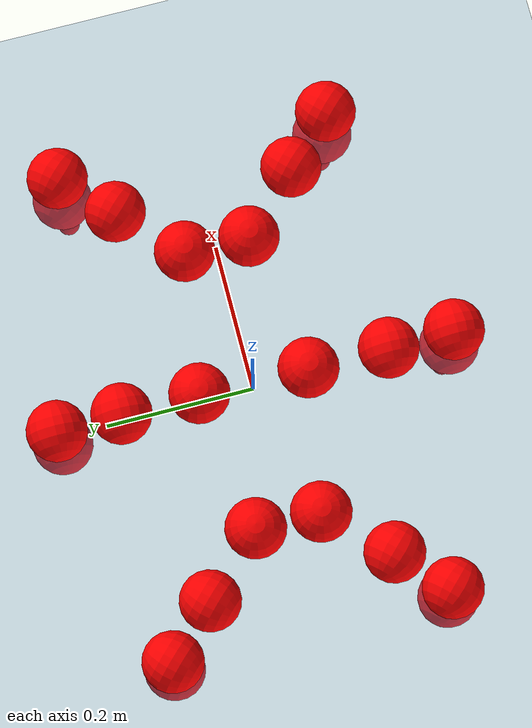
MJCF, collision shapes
<mujoco model="Golem">
  <compiler angle="radian" assetdir="assets" balanceinertia="true" inertiafromgeom="false"/>

  <option timestep="0.005" density="1.2" viscosity="2e-05"/>

  <size nkey="1"/>

  <visual>
    <quality shadowsize="8192"/>
    <map shadowclip="0.5"/>
  </visual>

  <default>
    <default class="/">
      <joint armature="0.01" damping="0.01" frictionloss="0.01"/>
      <geom contype="0" conaffinity="0" group="1" solref="-1000 -80"/>
      <site size="0.01 0.005 0.005" group="5"/>
      <general forcelimited="true" biastype="affine" gainprm="25" biasprm="0 -25 -0.5"/>
      <default class="visual">
        <geom type="mesh" group="2"/>
      </default>
      <default class="collision">
        <geom group="3"/>
      </default>
      <default class="foot">
        <geom size="0.01 0 0" condim="6" group="4" priority="1" solimp="0.015 1 0.01"/>
      </default>
      <default class="reward_collision_sphere">
        <geom group="5" rgba="1 0 0 1"/>
      </default>
    </default>
  </default>

  <asset>
    <texture type="skybox" colorspace="auto" name="//unnamed_texture_0" builtin="gradient" rgb1="0.95 0.95 0.95" rgb2="0.95 0.95 0.95" width="100" height="600"/>
    <texture type="2d" colorspace="auto" name="texplane" builtin="checker" rgb1="0.345 0.575 0.748" rgb2="0.345 0.575 0.748" markrgb="1 1 1" width="512" height="512"/>
    <material name="MatPlane" class="/" texture="texplane" texuniform="true" texrepeat="2 2" specular="0.9"/>
    <mesh name="body" class="/" file="body.stl" scale="0.001 0.001 0.001"/>
    <mesh name="coxa" class="/" file="coxa.stl" scale="0.001 0.001 0.001"/>
    <mesh name="femur" class="/" file="femur.stl" scale="0.001 0.001 0.001"/>
    <mesh name="tibia" class="/" file="tibia.stl" scale="0.001 0.001 0.001"/>
    <mesh name="tarsus" class="/" file="tarsus.stl" scale="0.001 0.001 0.001"/>
  </asset>

  <worldbody>
    <geom name="floor" class="/" size="100 100 0.125" type="plane" group="0" material="MatPlane"/>
    <light name="toplight_shadow" class="/" pos="0 0 5" dir="0.0990148 0.0990148 -0.990148" type="directional" ambient="0.04 0.04 0.04" diffuse="0.55 0.55 0.55" specular="0.12 0.12 0.12"/>
    <light name="toplight_fill" class="/" pos="0 0 5" dir="0.0990148 0.0990148 -0.990148" type="directional" castshadow="false" ambient="0.04 0.04 0.04" diffuse="0.3 0.3 0.3" specular="0.08 0.08 0.08"/>
    <body name="trunk" pos="-0.000341799 0.000123127 0.000565806" quat="1 -4.29686e-06 1.67223e-05 -1.9021e-05">
      <inertial pos="0.000140338 0.000826326 -0.00484505" quat="0.999951 0.000688394 0.00222882 0.00957637" mass="3.92656" diaginertia="0.0273284 0.00391393 0.0103876"/>
      <joint name="//unnamed_joint_0" type="free"/>
      <geom name="//unnamed_geom_1" class="/" pos="0 0 0.0644532" quat="1 0 0 0" type="mesh" rgba="0.9 0.9 0.9 1" mesh="body"/>
      <site name="imu" class="/" pos="0.154494 0.00509287 0.104322" size="0.0101839"/>
      <camera name="track" class="/" pos="0 -1.65902 0" quat="0.707107 0.707107 0 0" mode="trackcom"/>
      <camera name="ego_camera" class="/" pos="0.158415 0 0.100708" quat="-0.5 -0.5 0.5 0.5"/>
      <body name="coxa_RR" pos="-0.216342 -0.0678583 0.0634166" quat="0.382654 9.05887e-05 1.15273e-05 -0.923892">
        <inertial pos="0.000713715 -1.82516e-05 0.00114766" quat="1 2.01921e-05 -0.000103274 0.00033713" mass="0.20914" diaginertia="0.0271063 0.00388146 0.0102352"/>
        <joint name="coxa_joint_RR" class="/" pos="0 0 0" axis="-0.00373931 0.000430036 -0.999993" range="-3.12157 3.17758" armature="0.010538" damping="0.0106308" frictionloss="0.0103428"/>
        <geom name="//unnamed_geom_2" class="/" type="mesh" rgba="0.2 0.2 0.2 1" mesh="coxa"/>
        <geom name="//unnamed_geom_3" class="reward_collision_sphere" size="0.0407356" pos="-0.0365573 0 0"/>
        <body name="femur_RR" pos="0.0720395 0.00239929 0.00143656" quat="0.500048 -0.49999 0.499966 0.499996">
          <inertial pos="0.00101974 0.00183629 0.00227945" quat="0.999998 0.000353373 -0.00111319 0.00150415" mass="0.211359" diaginertia="0.0271364 0.00388145 0.0106152"/>
          <joint name="femur_joint_RR" class="/" pos="0 0 0" axis="-0.0041273 0.000235043 -0.999991" range="-3.1439 3.14151" armature="0.00966735" damping="0.00550128" frictionloss="0.0113647"/>
          <geom name="//unnamed_geom_4" class="/" type="mesh" rgba="0.9 0.9 0.9 1" mesh="femur"/>
          <geom name="//unnamed_geom_5" class="reward_collision_sphere" size="0.0407356"/>
          <body name="tibia_RR" pos="0.000214815 -0.0879864 -0.00208458" quat="5.72049e-05 1 -0.000295595 0.000158275">
            <inertial pos="-0.000393356 -0.00211106 0.000466435" quat="0.999997 0.00196959 0.00123278 -0.00106719" mass="0.209454" diaginertia="0.0270939 0.00392504 0.0103763"/>
            <joint name="tibia_joint_RR" class="/" pos="0 0 0" axis="-9.13464e-05 -0.000232244 1" range="-3.13834 3.14138" armature="0.0104476" damping="0.0144364" frictionloss="0.0101706"/>
            <geom name="//unnamed_geom_6" class="/" type="mesh" rgba="0.2 0.2 0.2 1" mesh="tibia"/>
            <geom name="//unnamed_geom_7" class="reward_collision_sphere" size="0.0407356"/>
            <body name="tarsus_RR" pos="0.1049 0.000642252 -8.12978e-05" quat="1 0.00026555 1.01872e-05 -9.95064e-05">
              <inertial pos="0.0737199 0.000718488 -0.000400507" quat="0.500077 0.500971 0.498501 0.500448" mass="0.214413" diaginertia="0.0276446 0.00399061 0.0104045"/>
              <joint name="tarsus_joint_RR" class="/" pos="0 0 0" axis="-0.00393284 0.000326465 0.999992" range="-3.18468 3.1854" armature="0.0104368" damping="0" frictionloss="0.0101466"/>
              <geom name="//unnamed_geom_8" class="/" type="mesh" rgba="0.9 0.9 0.9 1" mesh="tarsus"/>
              <geom name="foot_1" class="foot" size="0.0102854" pos="0.136481 0 0" quat="0 -0.707107 0 0.707107"/>
              <geom name="//unnamed_geom_10" class="reward_collision_sphere" size="0.0407356"/>
              <geom name="//unnamed_geom_11" class="reward_collision_sphere" size="0.0152758" pos="0.130997 0 0"/>
              <site name="foot_1" class="foot" pos="0.136481 0 0" quat="0 -0.707107 0 0.707107" size="0.0101839"/>
            </body>
          </body>
        </body>
      </body>
      <body name="coxa_RM" pos="-0.00209695 -0.111177 0.0636063" quat="0.707346 0.000156179 -0.00020989 -0.706868">
        <inertial pos="0.000695002 0.000318436 0.000790175" quat="0.999941 0.00356911 -0.00966414 0.00351959" mass="0.21479" diaginertia="0.0269972 0.003928 0.0105347"/>
        <joint name="coxa_joint_RM" class="/" pos="0 0 0" axis="-0.00410123 0.00301684 -0.999987" range="-3.13154 3.1379" armature="0.0101422" damping="0.0105831" frictionloss="0.0100099"/>
        <geom name="//unnamed_geom_12" class="/" type="mesh" rgba="0.2 0.2 0.2 1" mesh="coxa"/>
        <geom name="//unnamed_geom_13" class="reward_collision_sphere" size="0.0407356" pos="-0.0365573 0 0"/>
        <body name="femur_RM" pos="0.0723016 -0.00044644 -0.00185248" quat="0.499643 -0.499477 0.500313 0.500566">
          <inertial pos="-0.00204674 0.000210573 -0.00231902" quat="0.999997 0.000922286 0.00114916 0.00175769" mass="0.214739" diaginertia="0.0267204 0.00391857 0.0102466"/>
          <joint name="femur_joint_RM" class="/" pos="0 0 0" axis="0.00168873 0.000505492 -0.999998" range="-3.15471 3.17729" armature="0.009619" damping="0.00743322" frictionloss="0.00932115"/>
          <geom name="//unnamed_geom_14" class="/" type="mesh" rgba="0.9 0.9 0.9 1" mesh="femur"/>
          <geom name="//unnamed_geom_15" class="reward_collision_sphere" size="0.0407356"/>
          <body name="tibia_RM" pos="-0.000481928 -0.0894076 0.00198598" quat="-9.40151e-05 1 2.43796e-05 0.000303948">
            <inertial pos="0.000467475 -0.000989961 -0.000484228" quat="1 -0.000392976 0.000193375 -4.99661e-05" mass="0.209996" diaginertia="0.0266613 0.00386527 0.0102733"/>
            <joint name="tibia_joint_RM" class="/" pos="0 0 0" axis="-0.00755973 0.00475671 0.99996" range="-3.15986 3.10828" armature="0.0102128" damping="0" frictionloss="0.00975754"/>
            <geom name="//unnamed_geom_16" class="/" type="mesh" rgba="0.2 0.2 0.2 1" mesh="tibia"/>
            <geom name="//unnamed_geom_17" class="reward_collision_sphere" size="0.0407356"/>
            <body name="tarsus_RM" pos="0.105109 0.00165022 -0.00155537" quat="1 7.92419e-06 -9.09369e-06 -4.93259e-05">
              <inertial pos="0.0741705 3.57857e-06 0.000605179" quat="0.499638 0.503077 0.499941 0.497327" mass="0.208124" diaginertia="0.0265267 0.00387298 0.00994112"/>
              <joint name="tarsus_joint_RM" class="/" pos="0 0 0" axis="0.00352866 -0.00228987 0.999991" range="-3.17116 3.09628" armature="0.0101494" damping="0.00152106" frictionloss="0.0105627"/>
              <geom name="//unnamed_geom_18" class="/" type="mesh" rgba="0.9 0.9 0.9 1" mesh="tarsus"/>
              <geom name="foot_2" class="foot" size="0.00985593" pos="0.136481 0 0" quat="0 -0.707107 0 0.707107"/>
              <geom name="//unnamed_geom_20" class="reward_collision_sphere" size="0.0407356"/>
              <geom name="//unnamed_geom_21" class="reward_collision_sphere" size="0.0152758" pos="0.130997 0 0"/>
              <site name="foot_2" class="foot" pos="0.136481 0 0" quat="0 -0.707107 0 0.707107" size="0.0101839"/>
            </body>
          </body>
        </body>
      </body>
      <body name="coxa_RF" pos="0.215197 -0.0695267 0.0631003" quat="0.923922 0.000204609 -0.000209222 -0.382581">
        <inertial pos="-0.000892022 -0.0024424 -3.84539e-05" quat="0.999989 0.00124723 0.00390966 -0.00220321" mass="0.212743" diaginertia="0.0271158 0.00389847 0.0102706"/>
        <joint name="coxa_joint_RF" class="/" pos="0 0 0" axis="0.000513368 0.000606921 -1" range="-3.13755 3.14673" armature="0.00992369" damping="0" frictionloss="0.010323"/>
        <geom name="//unnamed_geom_22" class="/" type="mesh" rgba="0.2 0.2 0.2 1" mesh="coxa"/>
        <geom name="//unnamed_geom_23" class="reward_collision_sphere" size="0.0407356" pos="-0.0365573 0 0"/>
        <body name="femur_RF" pos="0.0739747 0.000321614 -0.00186948" quat="0.500022 -0.499843 0.500028 0.500108">
          <inertial pos="0.0003224 -4.58098e-05 0.00119011" quat="0.999991 0.00273999 -0.00317848 -0.00109202" mass="0.208119" diaginertia="0.0269877 0.00379373 0.0102722"/>
          <joint name="femur_joint_RF" class="/" pos="0 0 0" axis="0.000266284 -0.00141787 -0.999999" range="-3.10114 3.12764" armature="0.0102743" damping="0.00627799" frictionloss="0.00981976"/>
          <geom name="//unnamed_geom_24" class="/" type="mesh" rgba="0.9 0.9 0.9 1" mesh="femur"/>
          <geom name="//unnamed_geom_25" class="reward_collision_sphere" size="0.0407356"/>
          <body name="tibia_RF" pos="-0.0017553 -0.0891972 -0.00124466" quat="-3.96717e-05 1 -5.25409e-05 -1.55605e-06">
            <inertial pos="0.000595904 0.000789479 -1.03648e-05" quat="0.999941 0.00360459 -0.00511534 0.00893475" mass="0.217461" diaginertia="0.0266271 0.00394758 0.0104306"/>
            <joint name="tibia_joint_RF" class="/" pos="0 0 0" axis="-0.00128769 0.0017574 0.999998" range="-3.13789 3.13967" armature="0.00997354" damping="0.00147009" frictionloss="0.00990675"/>
            <geom name="//unnamed_geom_26" class="/" type="mesh" rgba="0.2 0.2 0.2 1" mesh="tibia"/>
            <geom name="//unnamed_geom_27" class="reward_collision_sphere" size="0.0407356"/>
            <body name="tarsus_RF" pos="0.108233 -0.000475901 -0.00199181" quat="1 2.61985e-05 -9.1125e-06 0.000157059">
              <inertial pos="0.0722611 -0.00161908 -0.00101967" quat="0.504045 0.500081 0.498152 0.497697" mass="0.205057" diaginertia="0.0268297 0.00385864 0.0102553"/>
              <joint name="tarsus_joint_RF" class="/" pos="0 0 0" axis="-0.00408676 0.00659481 0.99997" range="-3.15733 3.13755" armature="0.0101762" damping="0.0157834" frictionloss="0.010664"/>
              <geom name="//unnamed_geom_28" class="/" type="mesh" rgba="0.9 0.9 0.9 1" mesh="tarsus"/>
              <geom name="foot_3" class="foot" size="0.0101693" pos="0.136481 0 0" quat="0 -0.707107 0 0.707107"/>
              <geom name="//unnamed_geom_30" class="reward_collision_sphere" size="0.0407356"/>
              <geom name="//unnamed_geom_31" class="reward_collision_sphere" size="0.0152758" pos="0.130997 0 0"/>
              <site name="foot_3" class="foot" pos="0.136481 0 0" quat="0 -0.707107 0 0.707107" size="0.0101839"/>
            </body>
          </body>
        </body>
      </body>
      <body name="coxa_LR" pos="-0.216418 0.0715671 0.0669776" quat="0.3831 1.58955e-05 0.000347558 0.923707">
        <inertial pos="0.000277939 0.000128726 0.00221455" quat="0.999996 -0.000580082 -0.000559268 0.00253141" mass="0.210785" diaginertia="0.0266 0.00385161 0.00996505"/>
        <joint name="coxa_joint_LR" class="/" pos="0 0 0" axis="-0.000156626 -0.000300006 -1" range="-3.12414 3.12027" armature="0.0106319" damping="0" frictionloss="0.00914968"/>
        <geom name="//unnamed_geom_32" class="/" type="mesh" rgba="0.2 0.2 0.2 1" mesh="coxa"/>
        <geom name="//unnamed_geom_33" class="reward_collision_sphere" size="0.0407356" pos="-0.0365573 0 0"/>
        <body name="femur_LR" pos="0.074348 -0.00249446 -0.000588813" quat="0.499712 -0.500416 0.499888 0.499983">
          <inertial pos="0.00151537 0.000650335 0.000491875" quat="0.999987 0.000319486 -0.00507612 0.000661958" mass="0.205735" diaginertia="0.0268055 0.00395365 0.0103426"/>
          <joint name="femur_joint_LR" class="/" pos="0 0 0" axis="-0.00538448 -0.0043101 0.999976" range="-3.18587 3.10152" armature="0.00918035" damping="0.00359691" frictionloss="0.0100445"/>
          <geom name="//unnamed_geom_34" class="/" type="mesh" rgba="0.9 0.9 0.9 1" mesh="femur"/>
          <geom name="//unnamed_geom_35" class="reward_collision_sphere" size="0.0407356"/>
          <body name="tibia_LR" pos="0.000730322 -0.0916981 -0.00114753" quat="0.000284633 1 3.90379e-05 -1.40218e-05">
            <inertial pos="-0.000802561 -0.00143686 -0.000338506" quat="1 0.000173854 7.50001e-05 -0.000842846" mass="0.21402" diaginertia="0.0266667 0.00399657 0.0103578"/>
            <joint name="tibia_joint_LR" class="/" pos="0 0 0" axis="-0.00989609 0.00341455 -0.999945" range="-3.13538 3.11132" armature="0.0107145" damping="0" frictionloss="0.0100294"/>
            <geom name="//unnamed_geom_36" class="/" type="mesh" rgba="0.2 0.2 0.2 1" mesh="tibia"/>
            <geom name="//unnamed_geom_37" class="reward_collision_sphere" size="0.0407356"/>
            <body name="tarsus_LR" pos="0.109193 0.00118403 7.77154e-05" quat="0.999999 0.00082146 0.000532186 0.000213244">
              <inertial pos="0.0723188 -0.000720815 0.00126535" quat="0.499968 0.500007 0.499984 0.500042" mass="0.211051" diaginertia="0.0267066 0.00381576 0.0102499"/>
              <joint name="tarsus_joint_LR" class="/" pos="0 0 0" axis="-0.00188651 0.00256648 -0.999995" range="-3.14098 3.14825" armature="0.00971284" damping="0.0273435" frictionloss="0.0110397"/>
              <geom name="//unnamed_geom_38" class="/" type="mesh" rgba="0.9 0.9 0.9 1" mesh="tarsus"/>
              <geom name="foot_4" class="foot" size="0.0103285" pos="0.136481 0 0" quat="0.707107 0 -0.707107 0"/>
              <geom name="//unnamed_geom_40" class="reward_collision_sphere" size="0.0407356"/>
              <geom name="//unnamed_geom_41" class="reward_collision_sphere" size="0.0152758" pos="0.130997 0 0"/>
              <site name="foot_4" class="foot" pos="0.136481 0 0" quat="0.707107 0 -0.707107 0" size="0.0101839"/>
            </body>
          </body>
        </body>
      </body>
      <body name="coxa_LM" pos="0.000432676 0.108766 0.0639636" quat="0.707175 2.91253e-06 4.15567e-05 0.707038">
        <inertial pos="0.00194651 2.91416e-05 -0.000384939" quat="0.999987 -0.00221585 0.00412063 -0.00210553" mass="0.207178" diaginertia="0.0271338 0.00384833 0.0102574"/>
        <joint name="coxa_joint_LM" class="/" pos="0 0 0" axis="-0.00679004 -0.00105269 -0.999976" range="-3.1303 3.14135" armature="0.0100987" damping="0" frictionloss="0.0102379"/>
        <geom name="//unnamed_geom_42" class="/" type="mesh" rgba="0.2 0.2 0.2 1" mesh="coxa"/>
        <geom name="//unnamed_geom_43" class="reward_collision_sphere" size="0.0407356" pos="-0.0365573 0 0"/>
        <body name="femur_LM" pos="0.0687319 0.000829336 0.0010069" quat="0.499969 -0.500078 0.499788 0.500165">
          <inertial pos="-6.06435e-05 0.000206479 0.000420668" quat="0.999988 -0.00227759 -0.00370158 -0.00245064" mass="0.215003" diaginertia="0.0261956 0.00391985 0.0106038"/>
          <joint name="femur_joint_LM" class="/" pos="0 0 0" axis="-0.00931764 0.0104042 0.999902" range="-3.10105 3.15464" armature="0.010689" damping="0" frictionloss="0.0102064"/>
          <geom name="//unnamed_geom_44" class="/" type="mesh" rgba="0.9 0.9 0.9 1" mesh="femur"/>
          <geom name="//unnamed_geom_45" class="reward_collision_sphere" size="0.0407356"/>
          <body name="tibia_LM" pos="0.000444416 -0.0869871 0.00122281" quat="-0.000218885 1 -3.45573e-06 0.000133426">
            <inertial pos="-0.00195425 -0.000139164 -0.000112853" quat="0.999988 -0.00250805 0.00230873 -0.0036558" mass="0.211717" diaginertia="0.0269588 0.00396193 0.010386"/>
            <joint name="tibia_joint_LM" class="/" pos="0 0 0" axis="-0.00113286 0.00265442 -0.999996" range="-3.1585 3.15532" armature="0.00993116" damping="0" frictionloss="0.00895524"/>
            <geom name="//unnamed_geom_46" class="/" type="mesh" rgba="0.2 0.2 0.2 1" mesh="tibia"/>
            <geom name="//unnamed_geom_47" class="reward_collision_sphere" size="0.0407356"/>
            <body name="tarsus_LM" pos="0.109365 -0.000599143 0.000555787" quat="1 0.000323207 0.000422387 0.000171109">
              <inertial pos="0.0720291 -0.000330557 8.32152e-06" quat="0.497757 0.505558 0.500162 0.496474" mass="0.209351" diaginertia="0.0266702 0.00392659 0.0103069"/>
              <joint name="tarsus_joint_LM" class="/" pos="0 0 0" axis="-0.00651953 0.000109523 -0.999979" stiffness="0.00221215" range="-3.12332 3.13859" armature="0.00969223" damping="0.00535821" frictionloss="0.0104562"/>
              <geom name="//unnamed_geom_48" class="/" type="mesh" rgba="0.9 0.9 0.9 1" mesh="tarsus"/>
              <geom name="foot_5" class="foot" size="0.011209" pos="0.136481 0 0" quat="0.707107 0 -0.707107 0"/>
              <geom name="//unnamed_geom_50" class="reward_collision_sphere" size="0.0407356"/>
              <geom name="//unnamed_geom_51" class="reward_collision_sphere" size="0.0152758" pos="0.130997 0 0"/>
              <site name="foot_5" class="foot" pos="0.136481 0 0" quat="0.707107 0 -0.707107 0" size="0.0101839"/>
            </body>
          </body>
        </body>
      </body>
      <body name="coxa_LF" pos="0.216524 0.0695973 0.0631014" quat="0.923803 0.000126696 0.000240107 0.382868">
        <inertial pos="6.80841e-05 -0.00213686 0.000504913" quat="0.999965 -0.00300195 -0.00395236 0.00674134" mass="0.214988" diaginertia="0.0276188 0.00406778 0.0106978"/>
        <joint name="coxa_joint_LF" class="/" pos="0 0 0" axis="0.00296543 -0.00391646 -0.999988" range="-3.12542 3.13829" armature="0.0099044" damping="0.00292528" frictionloss="0.00953408"/>
        <geom name="//unnamed_geom_52" class="/" type="mesh" rgba="0.2 0.2 0.2 1" mesh="coxa"/>
        <geom name="//unnamed_geom_53" class="reward_collision_sphere" size="0.0407356" pos="-0.0365573 0 0"/>
        <body name="femur_LF" pos="0.0703592 0.000290564 0.000999248" quat="0.500082 -0.499928 0.499967 0.500023">
          <inertial pos="-0.000511546 -3.66873e-05 -0.00160877" quat="0.999994 -0.00203126 0.00262317 0.000672981" mass="0.210941" diaginertia="0.0264515 0.00390599 0.0102207"/>
          <joint name="femur_joint_LF" class="/" pos="0 0 0" axis="-0.00178847 0.00231958 0.999996" range="-3.13054 3.14016" armature="0.0103353" damping="0.002118" frictionloss="0.010055"/>
          <geom name="//unnamed_geom_54" class="/" type="mesh" rgba="0.9 0.9 0.9 1" mesh="femur"/>
          <geom name="//unnamed_geom_55" class="reward_collision_sphere" size="0.0407356"/>
          <body name="tibia_LF" pos="9.08797e-05 -0.0898414 -3.09391e-06" quat="0.00015132 1 0.000133099 -0.00011921">
            <inertial pos="0.00194456 0.00214853 0.00232275" quat="0.999987 0.00188693 -0.00330535 0.00337991" mass="0.211347" diaginertia="0.0270367 0.00393023 0.0106579"/>
            <joint name="tibia_joint_LF" class="/" pos="0 0 0" axis="0.00480585 -0.00551476 -0.999973" range="-3.1324 3.09971" armature="0.0103841" damping="0" frictionloss="0.0101363"/>
            <geom name="//unnamed_geom_56" class="/" type="mesh" rgba="0.2 0.2 0.2 1" mesh="tibia"/>
            <geom name="//unnamed_geom_57" class="reward_collision_sphere" size="0.0407356"/>
            <body name="tarsus_LF" pos="0.108208 0.000546642 -0.000873825" quat="1 -6.06827e-05 0.000102408 -2.23634e-05">
              <inertial pos="0.0734541 0.000805628 0.00189716" quat="0.49653 0.498128 0.500458 0.504844" mass="0.210995" diaginertia="0.0274469 0.00393506 0.0106647"/>
              <joint name="tarsus_joint_LF" class="/" pos="0 0 0" axis="0.000767023 -0.000409838 -1" range="-3.16699 3.0968" armature="0.00997455" damping="0.0149355" frictionloss="0.0100077"/>
              <geom name="//unnamed_geom_58" class="/" type="mesh" rgba="0.9 0.9 0.9 1" mesh="tarsus"/>
              <geom name="foot_6" class="foot" size="0.0102159" pos="0.136481 0 0" quat="0.707107 0 -0.707107 0"/>
              <geom name="//unnamed_geom_60" class="reward_collision_sphere" size="0.0407356"/>
              <geom name="//unnamed_geom_61" class="reward_collision_sphere" size="0.0152758" pos="0.130997 0 0"/>
              <site name="foot_6" class="foot" pos="0.136481 0 0" quat="0.707107 0 -0.707107 0" size="0.0101839"/>
            </body>
          </body>
        </body>
      </body>
    </body>
  </worldbody>

  <contact>
    <pair class="/" geom1="floor" geom2="foot_1" name="//unnamed_contact_0"/>
    <pair class="/" geom1="floor" geom2="foot_2" name="//unnamed_contact_1"/>
    <pair class="/" geom1="floor" geom2="foot_3" name="//unnamed_contact_2"/>
    <pair class="/" geom1="floor" geom2="foot_4" name="//unnamed_contact_3"/>
    <pair class="/" geom1="floor" geom2="foot_5" name="//unnamed_contact_4"/>
    <pair class="/" geom1="floor" geom2="foot_6" name="//unnamed_contact_5"/>
  </contact>

  <actuator>
    <general name="coxa_joint_RR" class="/" joint="coxa_joint_RR" forcerange="-7.59588 7.59588" gainprm="25.5439" biasprm="0 -25.5439 -0.524144"/>
    <general name="femur_joint_RR" class="/" joint="femur_joint_RR" forcerange="-7.34262 7.34262" gainprm="25.5439" biasprm="0 -25.5439 -0.524144"/>
    <general name="tibia_joint_RR" class="/" joint="tibia_joint_RR" forcerange="-7.46513 7.46513" gainprm="25.5439" biasprm="0 -25.5439 -0.524144"/>
    <general name="tarsus_joint_RR" class="/" joint="tarsus_joint_RR" forcerange="-7.58802 7.58802" gainprm="25.5439" biasprm="0 -25.5439 -0.524144"/>
    <general name="coxa_joint_RM" class="/" joint="coxa_joint_RM" forcerange="-7.28279 7.28279" gainprm="25.5439" biasprm="0 -25.5439 -0.524144"/>
    <general name="femur_joint_RM" class="/" joint="femur_joint_RM" forcerange="-7.34335 7.34335" gainprm="25.5439" biasprm="0 -25.5439 -0.524144"/>
    <general name="tibia_joint_RM" class="/" joint="tibia_joint_RM" forcerange="-7.4423 7.4423" gainprm="25.5439" biasprm="0 -25.5439 -0.524144"/>
    <general name="tarsus_joint_RM" class="/" joint="tarsus_joint_RM" forcerange="-7.20681 7.20681" gainprm="25.5439" biasprm="0 -25.5439 -0.524144"/>
    <general name="coxa_joint_RF" class="/" joint="coxa_joint_RF" forcerange="-7.29007 7.29007" gainprm="25.5439" biasprm="0 -25.5439 -0.524144"/>
    <general name="femur_joint_RF" class="/" joint="femur_joint_RF" forcerange="-7.45917 7.45917" gainprm="25.5439" biasprm="0 -25.5439 -0.524144"/>
    <general name="tibia_joint_RF" class="/" joint="tibia_joint_RF" forcerange="-7.41014 7.41014" gainprm="25.5439" biasprm="0 -25.5439 -0.524144"/>
    <general name="tarsus_joint_RF" class="/" joint="tarsus_joint_RF" forcerange="-7.63442 7.63442" gainprm="25.5439" biasprm="0 -25.5439 -0.524144"/>
    <general name="coxa_joint_LR" class="/" joint="coxa_joint_LR" forcerange="-7.71828 7.71828" gainprm="25.5439" biasprm="0 -25.5439 -0.524144"/>
    <general name="femur_joint_LR" class="/" joint="femur_joint_LR" forcerange="-7.03467 7.03467" gainprm="25.5439" biasprm="0 -25.5439 -0.524144"/>
    <general name="tibia_joint_LR" class="/" joint="tibia_joint_LR" forcerange="-7.44957 7.44957" gainprm="25.5439" biasprm="0 -25.5439 -0.524144"/>
    <general name="tarsus_joint_LR" class="/" joint="tarsus_joint_LR" forcerange="-7.45899 7.45899" gainprm="25.5439" biasprm="0 -25.5439 -0.524144"/>
    <general name="coxa_joint_LM" class="/" joint="coxa_joint_LM" forcerange="-7.51161 7.51161" gainprm="25.5439" biasprm="0 -25.5439 -0.524144"/>
    <general name="femur_joint_LM" class="/" joint="femur_joint_LM" forcerange="-7.63564 7.63564" gainprm="25.5439" biasprm="0 -25.5439 -0.524144"/>
    <general name="tibia_joint_LM" class="/" joint="tibia_joint_LM" forcerange="-7.41718 7.41718" gainprm="25.5439" biasprm="0 -25.5439 -0.524144"/>
    <general name="tarsus_joint_LM" class="/" joint="tarsus_joint_LM" forcerange="-7.36609 7.36609" gainprm="25.5439" biasprm="0 -25.5439 -0.524144"/>
    <general name="coxa_joint_LF" class="/" joint="coxa_joint_LF" forcerange="-7.70736 7.70736" gainprm="25.5439" biasprm="0 -25.5439 -0.524144"/>
    <general name="femur_joint_LF" class="/" joint="femur_joint_LF" forcerange="-7.61071 7.61071" gainprm="25.5439" biasprm="0 -25.5439 -0.524144"/>
    <general name="tibia_joint_LF" class="/" joint="tibia_joint_LF" forcerange="-7.43524 7.43524" gainprm="25.5439" biasprm="0 -25.5439 -0.524144"/>
    <general name="tarsus_joint_LF" class="/" joint="tarsus_joint_LF" forcerange="-6.76563 6.76563" gainprm="25.5439" biasprm="0 -25.5439 -0.524144"/>
  </actuator>

  <sensor>
    <gyro site="imu" name="imu_angular_velocity"/>
    <velocimeter site="imu" name="imu_linear_velocity"/>
    <framelinvel objtype="site" objname="foot_1" name="foot_1_global_linear_velocity"/>
    <framelinvel objtype="site" objname="foot_2" name="foot_2_global_linear_velocity"/>
    <framelinvel objtype="site" objname="foot_3" name="foot_3_global_linear_velocity"/>
    <framelinvel objtype="site" objname="foot_4" name="foot_4_global_linear_velocity"/>
    <framelinvel objtype="site" objname="foot_5" name="foot_5_global_linear_velocity"/>
    <framelinvel objtype="site" objname="foot_6" name="foot_6_global_linear_velocity"/>
  </sensor>

  <keyframe>
    <key name="home" qpos="0 0 0.1457 1 0 0 0 0 0 0 0 0 0 0 0 0 0 0 0 0 0 0 0 0 0 0 0 0 0 0 0"/>
  </keyframe>
</mujoco>
